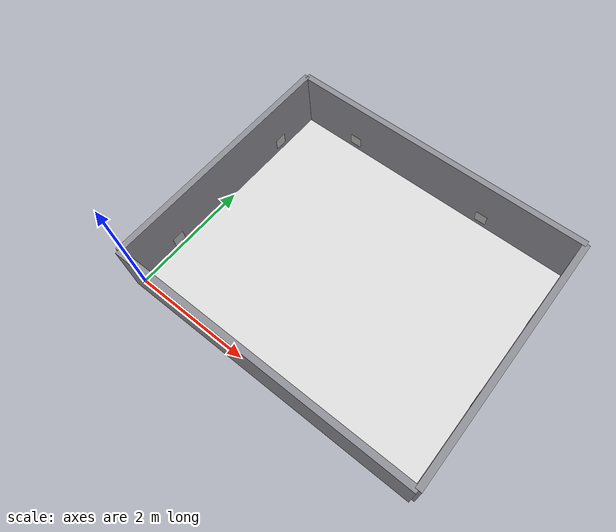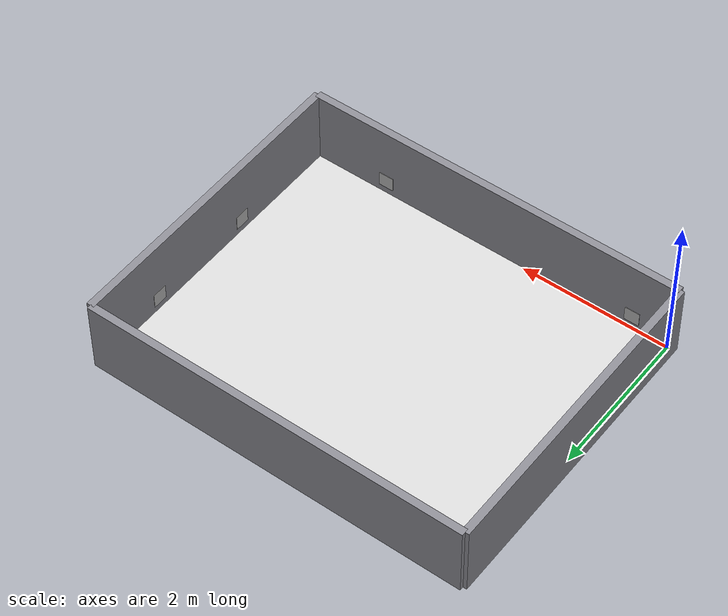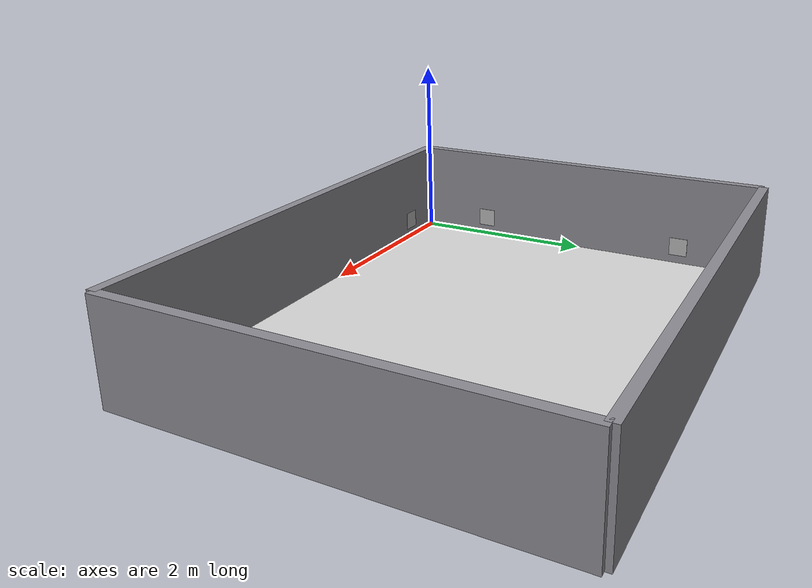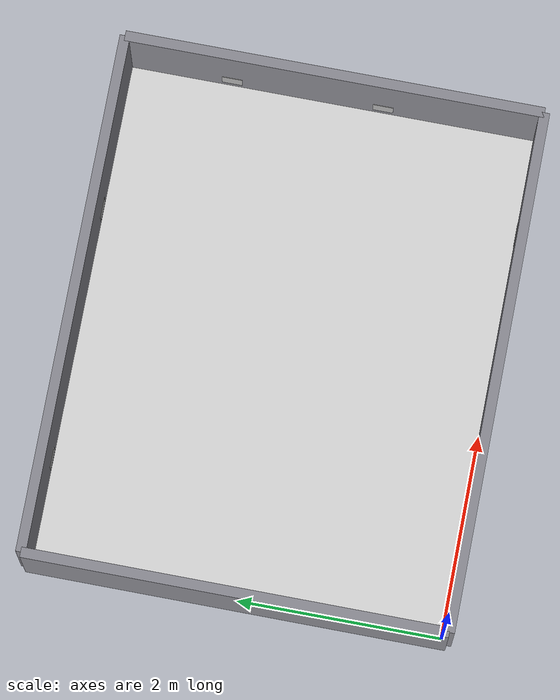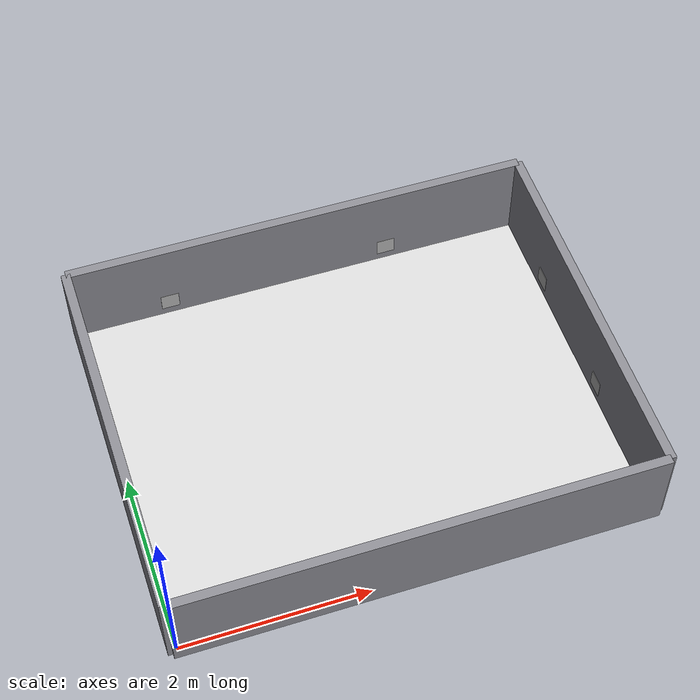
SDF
<?xml version="1.0"?>

<sdf version="1.6">
  <world name="room_tags">

    <gravity>0 0 -9.81</gravity>
    <magnetic_field>0 0 0</magnetic_field>

    <physics type="ode">
      <max_step_size>0.001</max_step_size>
      <real_time_factor>1.0</real_time_factor>
      <real_time_update_rate>1000</real_time_update_rate>
    </physics>

    <scene>
      <ambient>0.6 0.6 0.6 1</ambient>
      <background>0.7 0.7 0.75 1</background>
      <shadows>true</shadows>
    </scene>

    <light name="sun" type="directional">
      <cast_shadows>true</cast_shadows>
      <pose>0 0 10 0 0 0</pose>
      <diffuse>0.9 0.9 0.9 1</diffuse>
      <specular>0.3 0.3 0.3 1</specular>
      <attenuation>
        <range>1000</range>
        <constant>0.9</constant>
        <linear>0.01</linear>
        <quadratic>0.001</quadratic>
      </attenuation>
      <direction>-0.3 0.2 -1</direction>
    </light>

    <model name="room_floor">
      <static>true</static>
      <pose>2.5 2.0 0 0 0 0</pose>
      <link name="link">
        <collision name="collision">
          <geometry>
            <box>
              <size>5.0 4.0 0.02</size>
            </box>
          </geometry>
        </collision>
        <visual name="visual">
          <geometry>
            <box>
              <size>5.0 4.0 0.02</size>
            </box>
          </geometry>
          <material>
            <ambient>0.85 0.85 0.85 1</ambient>
            <diffuse>0.85 0.85 0.85 1</diffuse>
          </material>
        </visual>
      </link>
    </model>

    <model name="wall_south">
      <static>true</static>
      <pose>2.5 -0.05 0.5 0 0 0</pose>
      <link name="link">
        <collision name="collision">
          <geometry><box><size>5.1 0.1 1.0</size></box></geometry>
        </collision>
        <visual name="visual">
          <geometry><box><size>5.1 0.1 1.0</size></box></geometry>
          <material>
            <ambient>0.55 0.55 0.58 1</ambient>
            <diffuse>0.55 0.55 0.58 1</diffuse>
          </material>
        </visual>
      </link>
    </model>

    <model name="wall_north">
      <static>true</static>
      <pose>2.5 4.05 0.5 0 0 0</pose>
      <link name="link">
        <collision name="collision">
          <geometry><box><size>5.1 0.1 1.0</size></box></geometry>
        </collision>
        <visual name="visual">
          <geometry><box><size>5.1 0.1 1.0</size></box></geometry>
          <material>
            <ambient>0.55 0.55 0.58 1</ambient>
            <diffuse>0.55 0.55 0.58 1</diffuse>
          </material>
        </visual>
      </link>
    </model>

    <model name="wall_west">
      <static>true</static>
      <pose>-0.05 2.0 0.5 0 0 0</pose>
      <link name="link">
        <collision name="collision">
          <geometry><box><size>0.1 4.1 1.0</size></box></geometry>
        </collision>
        <visual name="visual">
          <geometry><box><size>0.1 4.1 1.0</size></box></geometry>
          <material>
            <ambient>0.55 0.55 0.58 1</ambient>
            <diffuse>0.55 0.55 0.58 1</diffuse>
          </material>
        </visual>
      </link>
    </model>

    <model name="wall_east">
      <static>true</static>
      <pose>5.05 2.0 0.5 0 0 0</pose>
      <link name="link">
        <collision name="collision">
          <geometry><box><size>0.1 4.1 1.0</size></box></geometry>
        </collision>
        <visual name="visual">
          <geometry><box><size>0.1 4.1 1.0</size></box></geometry>
          <material>
            <ambient>0.55 0.55 0.58 1</ambient>
            <diffuse>0.55 0.55 0.58 1</diffuse>
          </material>
        </visual>
      </link>
    </model>

    <model name="ar_tag_1">
      <static>true</static>
      <pose>1.0 3.9975 0.2 0 0 0</pose>
      <link name="link">
        <collision name="collision">
          <geometry><box><size>0.2 0.005 0.2</size></box></geometry>
        </collision>
        <visual name="visual">
          <geometry><box><size>0.2 0.005 0.2</size></box></geometry>
          <material>
            <script>
              <uri>file://materials/scripts</uri>
              <uri>file://materials/textures</uri>
              <name>Aruco/Marker</name>
            </script>
          </material>
        </visual>
      </link>
    </model>

    <model name="ar_tag_2">
      <static>true</static>
      <pose>3.5 3.9975 0.2 0 0 0</pose>
      <link name="link">
        <collision name="collision">
          <geometry><box><size>0.2 0.005 0.2</size></box></geometry>
        </collision>
        <visual name="visual">
          <geometry><box><size>0.2 0.005 0.2</size></box></geometry>
          <material>
            <script>
              <uri>file://materials/scripts</uri>
              <uri>file://materials/textures</uri>
              <name>Aruco/Marker</name>
            </script>
          </material>
        </visual>
      </link>
    </model>

    <model name="ar_tag_3">
      <static>true</static>
      <pose>0.5 0.0025 0.2 0 0 0</pose>
      <link name="link">
        <collision name="collision">
          <geometry><box><size>0.2 0.005 0.2</size></box></geometry>
        </collision>
        <visual name="visual">
          <geometry><box><size>0.2 0.005 0.2</size></box></geometry>
          <material>
            <script>
              <uri>file://materials/scripts</uri>
              <uri>file://materials/textures</uri>
              <name>Aruco/Marker</name>
            </script>
          </material>
        </visual>
      </link>
    </model>

    <model name="ar_tag_4">
      <static>true</static>
      <pose>4.0 0.0025 0.2 0 0 0</pose>
      <link name="link">
        <collision name="collision">
          <geometry><box><size>0.2 0.005 0.2</size></box></geometry>
        </collision>
        <visual name="visual">
          <geometry><box><size>0.2 0.005 0.2</size></box></geometry>
          <material>
            <script>
              <uri>file://materials/scripts</uri>
              <uri>file://materials/textures</uri>
              <name>Aruco/Marker</name>
            </script>
          </material>
        </visual>
      </link>
    </model>

    <model name="ar_tag_5">
      <static>true</static>
      <pose>4.9975 1.5 0.2 0 0 0</pose>
      <link name="link">
        <collision name="collision">
          <geometry><box><size>0.005 0.2 0.2</size></box></geometry>
        </collision>
        <visual name="visual">
          <geometry><box><size>0.005 0.2 0.2</size></box></geometry>
          <material>
            <script>
              <uri>file://materials/scripts</uri>
              <uri>file://materials/textures</uri>
              <name>Aruco/Marker</name>
            </script>
          </material>
        </visual>
      </link>
    </model>

    <model name="ar_tag_6">
      <static>true</static>
      <pose>4.9975 3.0 0.2 0 0 0</pose>
      <link name="link">
        <collision name="collision">
          <geometry><box><size>0.005 0.2 0.2</size></box></geometry>
        </collision>
        <visual name="visual">
          <geometry><box><size>0.005 0.2 0.2</size></box></geometry>
          <material>
            <script>
              <uri>file://materials/scripts</uri>
              <uri>file://materials/textures</uri>
              <name>Aruco/Marker</name>
            </script>
          </material>
        </visual>
      </link>
    </model>

    <model name="ar_tag_7">
      <static>true</static>
      <pose>0.0025 0.8 0.2 0 0 0</pose>
      <link name="link">
        <collision name="collision">
          <geometry><box><size>0.005 0.2 0.2</size></box></geometry>
        </collision>
        <visual name="visual">
          <geometry><box><size>0.005 0.2 0.2</size></box></geometry>
          <material>
            <script>
              <uri>file://materials/scripts</uri>
              <uri>file://materials/textures</uri>
              <name>Aruco/Marker</name>
            </script>
          </material>
        </visual>
      </link>
    </model>

    <model name="ar_tag_8">
      <static>true</static>
      <pose>0.0025 3.2 0.2 0 0 0</pose>
      <link name="link">
        <collision name="collision">
          <geometry><box><size>0.005 0.2 0.2</size></box></geometry>
        </collision>
        <visual name="visual">
          <geometry><box><size>0.005 0.2 0.2</size></box></geometry>
          <material>
            <script>
              <uri>file://materials/scripts</uri>
              <uri>file://materials/textures</uri>
              <name>Aruco/Marker</name>
            </script>
          </material>
        </visual>
      </link>
    </model>

  </world>
</sdf>
